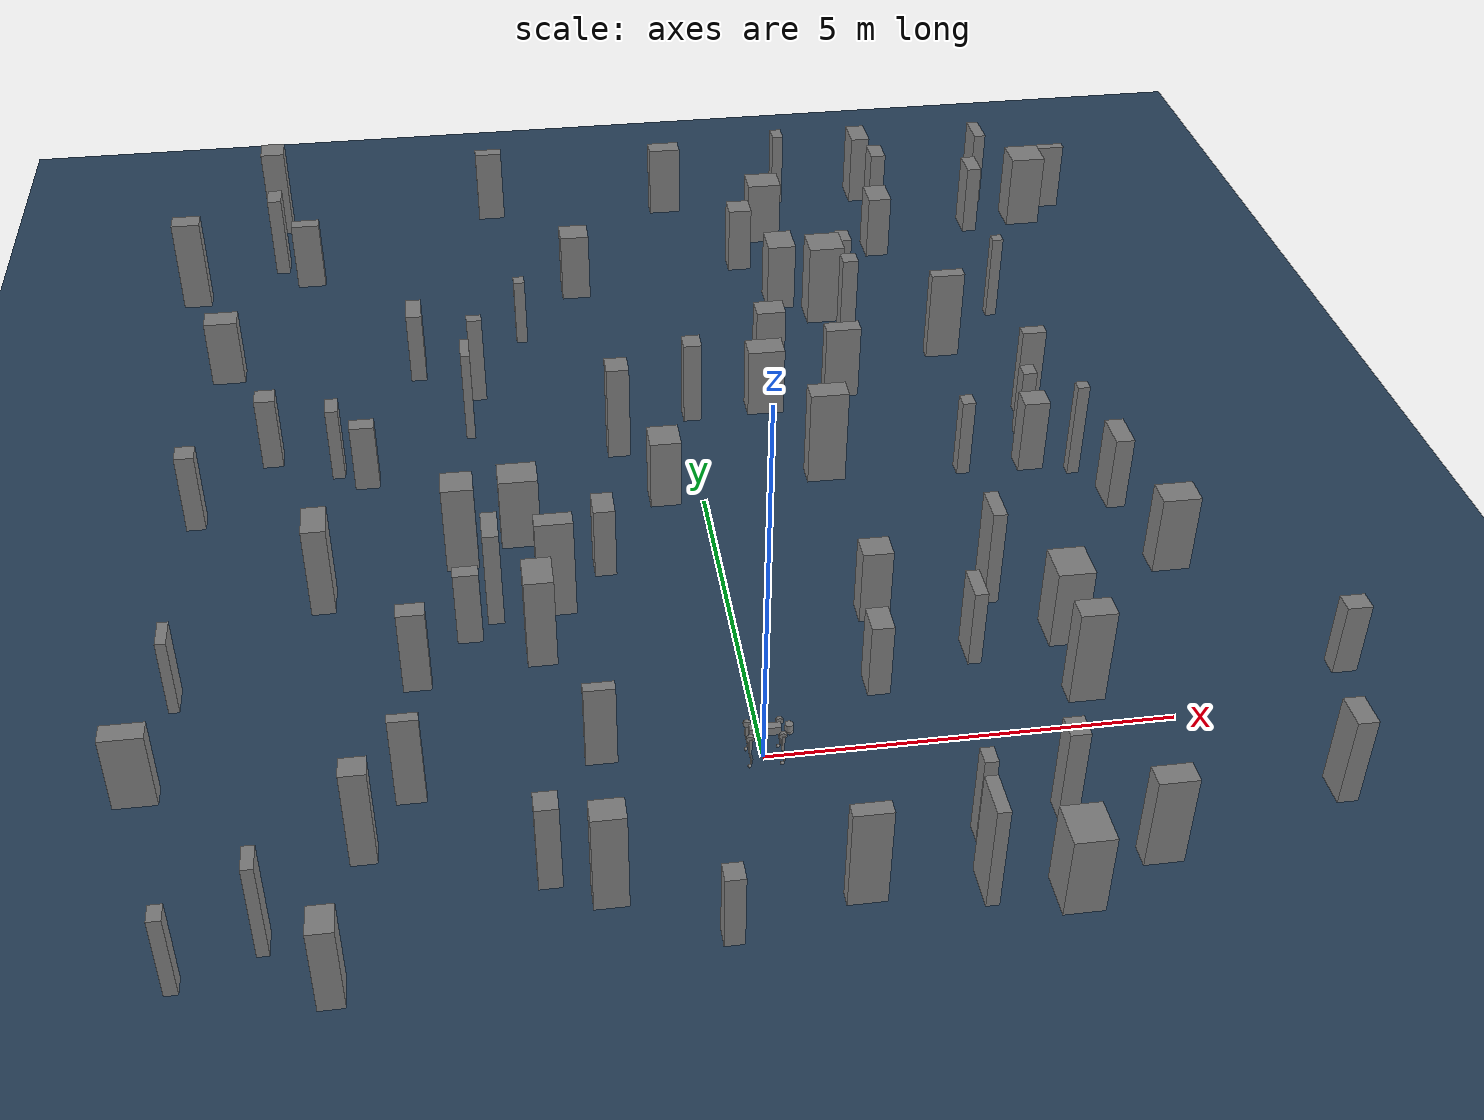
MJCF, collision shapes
<mujoco model="go2 scene">
  <include file="go2.xml" />

  <statistic center="0 0 0.1" extent="0.8" />

  <visual>
    <headlight diffuse="0.6 0.6 0.6" ambient="0.3 0.3 0.3" specular="0 0 0" />
    <rgba haze="0.15 0.25 0.35 1" />
    <global azimuth="-130" elevation="-20" />
  </visual>

  <asset>
    <texture type="skybox" builtin="gradient" rgb1="0.3 0.5 0.7" rgb2="0 0 0" width="512" height="3072" />
    <texture type="2d" name="groundplane" builtin="checker" mark="edge" rgb1="0.2 0.3 0.4" rgb2="0.1 0.2 0.3" markrgb="0.8 0.8 0.8" width="300" height="300" />
    <material name="groundplane" texture="groundplane" texuniform="true" texrepeat="5 5" reflectance="0.2" />
  </asset>

  <worldbody>
    <light pos="0 0 1.5" dir="0 0 -1" directional="true" />
    <geom name="floor" size="0 0 0.05" type="plane" material="groundplane" />
  <geom pos="0.10071943746270584 7.136932128754733 0.643684454831798" type="box" size="0.13100779988390282 0.14711312286241593 0.643684454831798" quat="1.0 0.0 0.0 0.0" /><geom pos="3.791109212029057 11.607750209671666 0.5216076152477432" type="box" size="0.18248277175930644 0.24793505421675938 0.5216076152477432" quat="1.0 0.0 0.0 0.0" /><geom pos="-7.304890818238102 11.363168016251223 0.7357384436638207" type="box" size="0.2131144150558406 0.14813400554509704 0.7357384436638207" quat="1.0 0.0 0.0 0.0" /><geom pos="-1.9015175131826538 0.21341936621922075 0.5830998529928246" type="box" size="0.18944045443132787 0.06884213979334089 0.5830998529928246" quat="1.0 0.0 0.0 0.0" /><geom pos="-2.0060548238532325 -1.887046198872417 0.6789512086454774" type="box" size="0.19815918210781147 0.15443679192282198 0.6789512086454774" quat="1.0 0.0 0.0 0.0" /><geom pos="-0.537827731828231 5.213203512839109 0.5205362005931232" type="box" size="0.21387547940876422 0.21760473924229892 0.5205362005931232" quat="1.0 0.0 0.0 0.0" /><geom pos="5.8947079523632695 2.89227182265034 0.5768605781198436" type="box" size="0.25669833583347845 0.18851423701125186 0.5768605781198436" quat="1.0 0.0 0.0 0.0" /><geom pos="-5.515091798130912 11.710389250581597 0.5537796012384049" type="box" size="0.21616985914240064 0.10055434133559162 0.5537796012384049" quat="1.0 0.0 0.0 0.0" /><geom pos="4.784465939933828 6.035153998589067 0.5506512245306338" type="box" size="0.10121730902194409 0.11695065562077839 0.5506512245306338" quat="1.0 0.0 0.0 0.0" /><geom pos="-2.9904473190418264 3.0738900413696584 0.7038018900191106" type="box" size="0.10479390641178189 0.25471010187306287 0.7038018900191106" quat="1.0 0.0 0.0 0.0" /><geom pos="5.183332705132494 9.343079015641264 0.6795589055262323" type="box" size="0.08200918233358986 0.08065927702273304 0.6795589055262323" quat="1.0 0.0 0.0 0.0" /><geom pos="-3.8491208055354225 8.838788085160093 0.5608123058916346" type="box" size="0.11403644031183187 0.24267140649064275 0.5608123058916346" quat="1.0 0.0 0.0 0.0" /><geom pos="5.521766010782361 12.196335922889816 0.5812702126215671" type="box" size="0.11296734940979455 0.22974387777417188 0.5812702126215671" quat="1.0 0.0 0.0 0.0" /><geom pos="-2.4596885847505847 2.1944769219568694 0.6609018677340344" type="box" size="0.1868554702011598 0.24843173256368856 0.6609018677340344" quat="1.0 0.0 0.0 0.0" /><geom pos="0.7455097421952805 -2.2580256986878573 0.6826406308112505" type="box" size="0.227854321963636 0.09046782537227094 0.6826406308112505" quat="1.0 0.0 0.0 0.0" /><geom pos="2.9240370790302306 10.150180994275512 0.5578403970872376" type="box" size="0.10566934731649752 0.1668357446443801 0.5578403970872376" quat="1.0 0.0 0.0 0.0" /><geom pos="2.526292016712543 9.671546584724359 0.655733197175696" type="box" size="0.2690635270725595 0.2521968193394388 0.655733197175696" quat="1.0 0.0 0.0 0.0" /><geom pos="5.241654082157914 5.057016037322834 0.7218653289090369" type="box" size="0.08440657144028209 0.07806539927406576 0.7218653289090369" quat="1.0 0.0 0.0 0.0" /><geom pos="-2.971306358896613 8.027102979297648 0.6910142521682385" type="box" size="0.1086053393449109 0.07920876482199471 0.6910142521682385" quat="1.0 0.0 0.0 0.0" /><geom pos="4.996869376257642 6.629539584987894 0.688078219600459" type="box" size="0.1728156136078259 0.09091051335224756 0.688078219600459" quat="1.0 0.0 0.0 0.0" /><geom pos="-3.368389770890463 4.178150274509212 0.6502006557735177" type="box" size="0.21165731666120036 0.20810079840439555 0.6502006557735177" quat="1.0 0.0 0.0 0.0" /><geom pos="-2.6355633321653995 -1.5375637107787588 0.6079132042762607" type="box" size="0.13557962000960405 0.13961595291678316 0.6079132042762607" quat="1.0 0.0 0.0 0.0" /><geom pos="4.022573752934877 12.817978163023367 0.5925118494222417" type="box" size="0.11973765518178879 0.20145343326439039 0.5925118494222417" quat="1.0 0.0 0.0 0.0" /><geom pos="-5.943993180701501 6.787343855363375 0.5588286206763886" type="box" size="0.1417803164148273 0.14723764777004017 0.5588286206763886" quat="1.0 0.0 0.0 0.0" /><geom pos="-4.119918409101452 -0.1293009023022118 0.6447929372881145" type="box" size="0.17681921090727387 0.06497454691524503 0.6447929372881145" quat="1.0 0.0 0.0 0.0" /><geom pos="2.0788176507016196 -2.290820677366678 0.7147676367844552" type="box" size="0.07798441353718771 0.2712590200522539 0.7147676367844552" quat="1.0 0.0 0.0 0.0" /><geom pos="1.5653495843653893 1.0677673359035427 0.5288686505737413" type="box" size="0.1408969073353995 0.19788040944160057 0.5288686505737413" quat="1.0 0.0 0.0 0.0" /><geom pos="-7.251905634209944 0.30634355573881455 0.5302988162405423" type="box" size="0.26144280630787864 0.13184509597585736 0.5302988162405423" quat="1.0 0.0 0.0 0.0" /><geom pos="-2.5036916961170403 13.593440470757267 0.607024639597643" type="box" size="0.2121728441200334 0.09333291754658105 0.607024639597643" quat="1.0 0.0 0.0 0.0" /><geom pos="0.47061148283648 13.460879678541707 0.5888700967410236" type="box" size="0.253252474221741 0.141611209014241 0.5888700967410236" quat="1.0 0.0 0.0 0.0" /><geom pos="4.133713395614911 8.29685485731411 0.7103247967543216" type="box" size="0.2501995468273721 0.0924357273739645 0.7103247967543216" quat="1.0 0.0 0.0 0.0" /><geom pos="1.3508488079416914 7.81481426629353 0.6694540668779474" type="box" size="0.21318061469867358 0.1689769401738223 0.6694540668779474" quat="1.0 0.0 0.0 0.0" /><geom pos="-1.2887422638611445 10.87095376717756 0.5515296266139857" type="box" size="0.2196927341129566 0.2001550154268415 0.5515296266139857" quat="1.0 0.0 0.0 0.0" /><geom pos="-6.925500032850672 5.454509100802365 0.5975012707137137" type="box" size="0.13029186065964737 0.1417000309461531 0.5975012707137137" quat="1.0 0.0 0.0 0.0" /><geom pos="-2.1987285609416602 3.0057351953349243 0.7329063873623525" type="box" size="0.24572330895464162 0.11975989134095079 0.7329063873623525" quat="1.0 0.0 0.0 0.0" /><geom pos="-2.239637524660602 9.551464368580625 0.5345695502805957" type="box" size="0.08230734774611391 0.09343514122071088 0.5345695502805957" quat="1.0 0.0 0.0 0.0" /><geom pos="-0.7685565398468528 -2.6019773943382094 0.5055953414934523" type="box" size="0.11539705119647084 0.12190552487836166 0.5055953414934523" quat="1.0 0.0 0.0 0.0" /><geom pos="-3.1360607769762554 7.197623263462766 0.7053704692950588" type="box" size="0.06388788856722528 0.2242328111077776 0.7053704692950588" quat="1.0 0.0 0.0 0.0" /><geom pos="3.36866051828825 2.624019456635147 0.7117042128063876" type="box" size="0.09098680418874835 0.2462767973087356 0.7117042128063876" quat="1.0 0.0 0.0 0.0" /><geom pos="-6.0535399977968325 13.642207669881056 0.7395219237253268" type="box" size="0.18429821811370783 0.1984309593835393 0.7395219237253268" quat="1.0 0.0 0.0 0.0" /><geom pos="-1.510710266106324 3.8053914759442216 0.5253880349636281" type="box" size="0.1423597624136115 0.20754862713469213 0.5253880349636281" quat="1.0 0.0 0.0 0.0" /><geom pos="6.981847932589058 12.718510455759011 0.5594221289591068" type="box" size="0.274219509127371 0.0696288573434972 0.5594221289591068" quat="1.0 0.0 0.0 0.0" /><geom pos="5.84982536211688 13.180328297730401 0.6451493510031737" type="box" size="0.09296302648930398 0.2652588418643026 0.6451493510031737" quat="1.0 0.0 0.0 0.0" /><geom pos="-6.687885834230224 9.068248514935604 0.5237348688519464" type="box" size="0.24003362805558384 0.16954610655875163 0.5237348688519464" quat="1.0 0.0 0.0 0.0" /><geom pos="-4.613742639055879 6.057763580707372 0.5119357669693113" type="box" size="0.16952276771732283 0.11143565205140926 0.5119357669693113" quat="1.0 0.0 0.0 0.0" /><geom pos="-5.990409618222344 12.290761454232076 0.6607583611053964" type="box" size="0.10614828923132438 0.18791120339452363 0.6607583611053964" quat="1.0 0.0 0.0 0.0" /><geom pos="4.115202549515423 1.7098422714267287 0.5705014029114823" type="box" size="0.23818321002565876 0.2645911273897402 0.5705014029114823" quat="1.0 0.0 0.0 0.0" /><geom pos="1.9889916509581553 12.294991356541836 0.5247851193808508" type="box" size="0.2656796738943199 0.2198902250498756 0.5247851193808508" quat="1.0 0.0 0.0 0.0" /><geom pos="-5.017335663006966 6.405259757236703 0.5672689563016173" type="box" size="0.0874603137313791 0.16200869116752165 0.5672689563016173" quat="1.0 0.0 0.0 0.0" /><geom pos="1.1881201763589182 7.210876021973496 0.5319691618807856" type="box" size="0.2657572761796963 0.181917303221523 0.5319691618807856" quat="1.0 0.0 0.0 0.0" /><geom pos="6.510080054473656 -1.400639056947791 0.615933815057241" type="box" size="0.12576528199335216 0.21227257785650497 0.615933815057241" quat="1.0 0.0 0.0 0.0" /><geom pos="3.034038160293319 -2.519197531012916 0.5507972916690442" type="box" size="0.24165828817715757 0.2745657220061748 0.5507972916690442" quat="1.0 0.0 0.0 0.0" /><geom pos="-5.708930962019579 -2.032724735448248 0.6661377053161749" type="box" size="0.06980733158582414 0.16651171518880567 0.6661377053161749" quat="1.0 0.0 0.0 0.0" /><geom pos="-5.17570438807775 3.5663668222565077 0.6679981812949547" type="box" size="0.15606222307188858 0.26082052848458326 0.6679981812949547" quat="1.0 0.0 0.0 0.0" /><geom pos="-6.935855184865984 1.9002069550875063 0.5510638539282311" type="box" size="0.06614938027631424 0.1999796670440851 0.5510638539282311" quat="1.0 0.0 0.0 0.0" /><geom pos="2.8644535629569985 1.4978676923608787 0.5563013043181584" type="box" size="0.08569344120572603 0.2361428933803479 0.5563013043181584" quat="1.0 0.0 0.0 0.0" /><geom pos="2.4358100811538668 13.539011391955311 0.6291632368436345" type="box" size="0.08780991703238153 0.14184117619044523 0.6291632368436345" quat="1.0 0.0 0.0 0.0" /><geom pos="-4.658192610061118 -0.9149995305094554 0.6899435824327274" type="box" size="0.15419879219054733 0.1426094004291446 0.6899435824327274" quat="1.0 0.0 0.0 0.0" /><geom pos="2.7652528848012707 8.930651707669348 0.7135298165771049" type="box" size="0.11852578024673653 0.12467074134793536 0.7135298165771049" quat="1.0 0.0 0.0 0.0" /><geom pos="-6.631142103062306 -2.4732661739935358 0.5712275004928915" type="box" size="0.07882966288043802 0.11235878724131673 0.5712275004928915" quat="1.0 0.0 0.0 0.0" /><geom pos="1.7610512778699237 5.425604154365335 0.7188447790336067" type="box" size="0.2665295380418825 0.1535224399252633 0.7188447790336067" quat="1.0 0.0 0.0 0.0" /><geom pos="4.114920120815094 -2.093049675086186 0.6277993315843952" type="box" size="0.23416767474154265 0.13770790356289875 0.6277993315843952" quat="1.0 0.0 0.0 0.0" /><geom pos="2.213045327492388 -1.5077927242831182 0.6083320879327735" type="box" size="0.08077092431376076 0.1162261856125125 0.6083320879327735" quat="1.0 0.0 0.0 0.0" /><geom pos="3.853331060595133 13.539604914009583 0.5887830297213168" type="box" size="0.15137661052158766 0.25948847295001054 0.5887830297213168" quat="1.0 0.0 0.0 0.0" /><geom pos="4.048999789080433 0.5701835014339593 0.6816623162143128" type="box" size="0.2273086608038057 0.15248804310490008 0.6816623162143128" quat="1.0 0.0 0.0 0.0" /><geom pos="1.9125076044689209 10.184243054002984 0.5522015150576188" type="box" size="0.2147545431039933 0.2568007412439213 0.5522015150576188" quat="1.0 0.0 0.0 0.0" /><geom pos="3.2592329325060545 -1.290219703686024 0.6528888799014025" type="box" size="0.12159710971046175 0.146004547010312 0.6528888799014025" quat="1.0 0.0 0.0 0.0" /><geom pos="1.798158422481773 2.4073280629952443 0.5383853018600103" type="box" size="0.19790630075803514 0.1718595263564362 0.5383853018600103" quat="1.0 0.0 0.0 0.0" /><geom pos="4.668522030029569 5.305434749391622 0.5597473402990263" type="box" size="0.1802917340393935 0.16479883782080318 0.5597473402990263" quat="1.0 0.0 0.0 0.0" /><geom pos="-2.571741164955484 4.565651532280519 0.5410185916320245" type="box" size="0.2629306243719131 0.21732471045720617 0.5410185916320245" quat="1.0 0.0 0.0 0.0" /><geom pos="6.484167197656456 12.351781056421565 0.6046786327481941" type="box" size="0.2731772151516607 0.2567607289296141 0.6046786327481941" quat="1.0 0.0 0.0 0.0" /><geom pos="-4.9846915914898435 -2.7988462940269887 0.5824645302412015" type="box" size="0.14956353101786296 0.19117653453473019 0.5824645302412015" quat="1.0 0.0 0.0 0.0" /><geom pos="-1.0542970971779004 6.405849653912863 0.7305446470038335" type="box" size="0.1582057688248074 0.1665324147553817 0.7305446470038335" quat="1.0 0.0 0.0 0.0" /><geom pos="1.4470084733477062 11.39079355081128 0.5399439025208999" type="box" size="0.17843870076339907 0.17686791829837195 0.5399439025208999" quat="1.0 0.0 0.0 0.0" /><geom pos="-4.011377974345144 1.8112767024238967 0.6022056205761028" type="box" size="0.17455647713466527 0.11718560781469087 0.6022056205761028" quat="1.0 0.0 0.0 0.0" /><geom pos="2.3749561293832917 7.435436320590963 0.5801772781364447" type="box" size="0.2557511450780362 0.11391132342746983 0.5801772781364447" quat="1.0 0.0 0.0 0.0" /><geom pos="3.7038212650466837 5.2910277819924145 0.5930119318744028" type="box" size="0.09049951435785655 0.11073924597253818 0.5930119318744028" quat="1.0 0.0 0.0 0.0" /><geom pos="7.364605620957906 0.6181696452258061 0.5156440925577673" type="box" size="0.15934247997596823 0.125342572629533 0.5156440925577673" quat="1.0 0.0 0.0 0.0" /><geom pos="5.596999134276711 4.38379479163198 0.5567977883456873" type="box" size="0.12896421108082395 0.25917324741450887 0.5567977883456873" quat="1.0 0.0 0.0 0.0" /><geom pos="-3.331339212245232 2.5985655140904336 0.5406813563976864" type="box" size="0.16178284807563897 0.0968874132195219 0.5406813563976864" quat="1.0 0.0 0.0 0.0" /></worldbody>
</mujoco>

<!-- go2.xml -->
<mujoco model="go2">
  <compiler angle="radian" meshdir="assets" autolimits="true" />

  <option cone="elliptic" impratio="100" />

  <default>
    <default class="go2">
      <geom friction="0.4" margin="0.001" condim="1"/>
      <joint axis="0 1 0" damping="0.1" armature="0.01" frictionloss="0.2"/>
      <motor ctrlrange="-23.7 23.7"/>
      <default class="abduction">
        <joint axis="1 0 0" range="-1.0472 1.0472"/>
      </default>
      <default class="hip">
        <default class="front_hip">
          <joint range="-1.5708 3.4907"/>
        </default>
        <default class="back_hip">
          <joint range="-0.5236 4.5379"/>
        </default>
      </default>
      <default class="knee">
        <joint range="-2.7227 -0.83776"/>
        <motor ctrlrange="-45.43 45.43"/>
      </default>
      <default class="visual">
        <geom type="mesh" contype="0" conaffinity="0" group="2"/>
      </default>
      <default class="collision">
        <geom group="3"/>
        <default class="foot">
          <geom size="0.022" pos="-0.002 0 -0.213" priority="1" condim="6"
            friction="0.4 0.02 0.01"/>
        </default>
      </default>
    </default>
  </default>

  <asset>
    <material name="metal" rgba=".9 .95 .95 1" />
    <material name="black" rgba="0 0 0 1" />
    <material name="white" rgba="1 1 1 1" />
    <material name="gray" rgba="0.671705 0.692426 0.774270 1" />

    <mesh file="base_0.obj" />
    <mesh file="base_1.obj" />
    <mesh file="base_2.obj" />
    <mesh file="base_3.obj" />
    <mesh file="base_4.obj" />
    <mesh file="hip_0.obj" />
    <mesh file="hip_1.obj" />
    <mesh file="thigh_0.obj" />
    <mesh file="thigh_1.obj" />
    <mesh file="thigh_mirror_0.obj" />
    <mesh file="thigh_mirror_1.obj" />
    <mesh file="calf_0.obj" />
    <mesh file="calf_1.obj" />
    <mesh file="calf_mirror_0.obj" />
    <mesh file="calf_mirror_1.obj" />
    <mesh file="foot.obj" />
  </asset>

  <worldbody>
    <body name="base_link" pos="0 0 0.445" childclass="go2">
      <inertial pos="0.021112 0 -0.005366" quat="-0.000543471 0.713435 -0.00173769 0.700719"
        mass="6.921"
        diaginertia="0.107027 0.0980771 0.0244531" />
      <freejoint />
      <geom mesh="base_0" material="black" class="visual" />
      <geom mesh="base_1" material="black" class="visual" />
      <geom mesh="base_2" material="black" class="visual" />
      <geom mesh="base_3" material="white" class="visual" />
      <geom mesh="base_4" material="gray" class="visual" />
      <geom size="0.1881 0.04675 0.057" type="box" class="collision" />
      <geom size="0.05 0.045" pos="0.285 0 0.01" type="cylinder" class="collision" />
      <geom size="0.047" pos="0.293 0 -0.06" class="collision" />
      <site name="imu" pos="-0.02557 0 0.04232" />
      <camera name="base_camera" pos="0.32715 0 0.09297" xyaxes="0 -1 0 0 0 1"
        resolution="640 480" sensorsize="640 480"
        focalpixel="391.9765 391.9765" principalpixel="0.7953 -1.4250"
        output="rgb depth" />
      <body name="FL_hip" pos="0.1934 0.0465 0">
        <inertial pos="-0.0054 0.00194 -0.000105" quat="0.497014 0.499245 0.505462 0.498237"
          mass="0.678"
          diaginertia="0.00088403 0.000596003 0.000479967" />
        <joint name="FL_hip_joint" class="abduction" />
        <geom mesh="hip_0" material="metal" class="visual" />
        <geom mesh="hip_1" material="gray" class="visual" />
        <geom size="0.046 0.02" pos="0 0.08 0" quat="1 1 0 0" type="cylinder" class="collision" />
        <body name="FL_thigh" pos="0 0.0955 0">
          <inertial pos="-0.00374 -0.0223 -0.0327" quat="0.829533 0.0847635 -0.0200632 0.551623"
            mass="1.152"
            diaginertia="0.00594973 0.00584149 0.000878787" />
          <joint name="FL_thigh_joint" class="front_hip" />
          <geom mesh="thigh_0" material="metal" class="visual" />
          <geom mesh="thigh_1" material="gray" class="visual" />
          <geom size="0.1065 0.01225 0.017" pos="0 0 -0.1065" quat="0.707107 0 0.707107 0"
            type="box" class="collision" />
          <body name="FL_calf" pos="0 0 -0.213">
            <inertial pos="0.00629595 -0.000622121 -0.141417"
              quat="0.710672 0.00154099 -0.00450087 0.703508"
              mass="0.241352" diaginertia="0.0014901 0.00146356 5.31397e-05" />
            <joint name="FL_calf_joint" class="knee" />
            <geom mesh="calf_0" material="gray" class="visual" />
            <geom mesh="calf_1" material="black" class="visual" />
            <geom size="0.012 0.06" pos="0.008 0 -0.06" quat="0.994493 0 -0.104807 0"
              type="cylinder" class="collision" />
            <geom size="0.011 0.0325" pos="0.02 0 -0.148" quat="0.999688 0 0.0249974 0"
              type="cylinder" class="collision" />
            <geom pos="0 0 -0.213" mesh="foot" class="visual" material="black" />
            <geom name="FL" class="foot" />
            <body name="FL_foot" pos="0 0 -0.213" />
          </body>
        </body>
      </body>
      <body name="FR_hip" pos="0.1934 -0.0465 0">
        <inertial pos="-0.0054 -0.00194 -0.000105" quat="0.498237 0.505462 0.499245 0.497014"
          mass="0.678"
          diaginertia="0.00088403 0.000596003 0.000479967" />
        <joint name="FR_hip_joint" class="abduction" />
        <geom mesh="hip_0" material="metal" class="visual" quat="4.63268e-05 1 0 0" />
        <geom mesh="hip_1" material="gray" class="visual" quat="4.63268e-05 1 0 0" />
        <geom size="0.046 0.02" pos="0 -0.08 0" quat="0.707107 0.707107 0 0" type="cylinder"
          class="collision" />
        <body name="FR_thigh" pos="0 -0.0955 0">
          <inertial pos="-0.00374 0.0223 -0.0327" quat="0.551623 -0.0200632 0.0847635 0.829533"
            mass="1.152"
            diaginertia="0.00594973 0.00584149 0.000878787" />
          <joint name="FR_thigh_joint" class="front_hip" />
          <geom mesh="thigh_mirror_0" material="metal" class="visual" />
          <geom mesh="thigh_mirror_1" material="gray" class="visual" />
          <geom size="0.1065 0.01225 0.017" pos="0 0 -0.1065" quat="0.707107 0 0.707107 0"
            type="box" class="collision" />
          <body name="FR_calf" pos="0 0 -0.213">
            <inertial pos="0.00629595 0.000622121 -0.141417"
              quat="0.703508 -0.00450087 0.00154099 0.710672"
              mass="0.241352" diaginertia="0.0014901 0.00146356 5.31397e-05" />
            <joint name="FR_calf_joint" class="knee" />
            <geom mesh="calf_mirror_0" material="gray" class="visual" />
            <geom mesh="calf_mirror_1" material="black" class="visual" />
            <geom size="0.013 0.06" pos="0.01 0 -0.06" quat="0.995004 0 -0.0998334 0"
              type="cylinder" class="collision" />
            <geom size="0.011 0.0325" pos="0.02 0 -0.148" quat="0.999688 0 0.0249974 0"
              type="cylinder" class="collision" />
            <geom pos="0 0 -0.213" mesh="foot" class="visual" material="black" />
            <geom name="FR" class="foot" />
            <body name="FR_foot" pos="0 0 -0.213" />
          </body>
        </body>
      </body>
      <body name="RL_hip" pos="-0.1934 0.0465 0">
        <inertial pos="0.0054 0.00194 -0.000105" quat="0.505462 0.498237 0.497014 0.499245"
          mass="0.678"
          diaginertia="0.00088403 0.000596003 0.000479967" />
        <joint name="RL_hip_joint" class="abduction" />
        <geom mesh="hip_0" material="metal" class="visual" quat="4.63268e-05 0 1 0" />
        <geom mesh="hip_1" material="gray" class="visual" quat="4.63268e-05 0 1 0" />
        <geom size="0.046 0.02" pos="0 0.08 0" quat="0.707107 0.707107 0 0" type="cylinder"
          class="collision" />
        <body name="RL_thigh" pos="0 0.0955 0">
          <inertial pos="-0.00374 -0.0223 -0.0327" quat="0.829533 0.0847635 -0.0200632 0.551623"
            mass="1.152"
            diaginertia="0.00594973 0.00584149 0.000878787" />
          <joint name="RL_thigh_joint" class="back_hip" />
          <geom mesh="thigh_0" material="metal" class="visual" />
          <geom mesh="thigh_1" material="gray" class="visual" />
          <geom size="0.1065 0.01225 0.017" pos="0 0 -0.1065" quat="0.707107 0 0.707107 0"
            type="box" class="collision" />
          <body name="RL_calf" pos="0 0 -0.213">
            <inertial pos="0.00629595 -0.000622121 -0.141417"
              quat="0.710672 0.00154099 -0.00450087 0.703508"
              mass="0.241352" diaginertia="0.0014901 0.00146356 5.31397e-05" />
            <joint name="RL_calf_joint" class="knee" />
            <geom mesh="calf_0" material="gray" class="visual" />
            <geom mesh="calf_1" material="black" class="visual" />
            <geom size="0.013 0.06" pos="0.01 0 -0.06" quat="0.995004 0 -0.0998334 0"
              type="cylinder" class="collision" />
            <geom size="0.011 0.0325" pos="0.02 0 -0.148" quat="0.999688 0 0.0249974 0"
              type="cylinder" class="collision" />
            <geom pos="0 0 -0.213" mesh="foot" class="visual" material="black" />
            <geom name="RL" class="foot" />
            <body name="RL_foot" pos="0 0 -0.213" />
          </body>
        </body>
      </body>
      <body name="RR_hip" pos="-0.1934 -0.0465 0">
        <inertial pos="0.0054 -0.00194 -0.000105" quat="0.499245 0.497014 0.498237 0.505462"
          mass="0.678"
          diaginertia="0.00088403 0.000596003 0.000479967" />
        <joint name="RR_hip_joint" class="abduction" />
        <geom mesh="hip_0" material="metal" class="visual"
          quat="2.14617e-09 4.63268e-05 4.63268e-05 -1" />
        <geom mesh="hip_1" material="gray" class="visual"
          quat="2.14617e-09 4.63268e-05 4.63268e-05 -1" />
        <geom size="0.046 0.02" pos="0 -0.08 0" quat="0.707107 0.707107 0 0" type="cylinder"
          class="collision" />
        <body name="RR_thigh" pos="0 -0.0955 0">
          <inertial pos="-0.00374 0.0223 -0.0327" quat="0.551623 -0.0200632 0.0847635 0.829533"
            mass="1.152"
            diaginertia="0.00594973 0.00584149 0.000878787" />
          <joint name="RR_thigh_joint" class="back_hip" />
          <geom mesh="thigh_mirror_0" material="metal" class="visual" />
          <geom mesh="thigh_mirror_1" material="gray" class="visual" />
          <geom size="0.1065 0.01225 0.017" pos="0 0 -0.1065" quat="0.707107 0 0.707107 0"
            type="box" class="collision" />
          <body name="RR_calf" pos="0 0 -0.213">
            <inertial pos="0.00629595 0.000622121 -0.141417"
              quat="0.703508 -0.00450087 0.00154099 0.710672"
              mass="0.241352" diaginertia="0.0014901 0.00146356 5.31397e-05" />
            <joint name="RR_calf_joint" class="knee" />
            <geom mesh="calf_mirror_0" material="gray" class="visual" />
            <geom mesh="calf_mirror_1" material="black" class="visual" />
            <geom size="0.013 0.06" pos="0.01 0 -0.06" quat="0.995004 0 -0.0998334 0"
              type="cylinder" class="collision" />
            <geom size="0.011 0.0325" pos="0.02 0 -0.148" quat="0.999688 0 0.0249974 0"
              type="cylinder" class="collision" />
            <geom pos="0 0 -0.213" mesh="foot" class="visual" material="black" />
            <geom name="RR" class="foot" />
            <body name="RR_foot" pos="0 0 -0.213" />
          </body>
        </body>
      </body>
    </body>
  </worldbody>

  <actuator>
    <motor class="abduction" name="FR_hip" joint="FR_hip_joint" />
    <motor class="hip" name="FR_thigh" joint="FR_thigh_joint" />
    <motor class="knee" name="FR_calf" joint="FR_calf_joint" />
    <motor class="abduction" name="FL_hip" joint="FL_hip_joint" />
    <motor class="hip" name="FL_thigh" joint="FL_thigh_joint" />
    <motor class="knee" name="FL_calf" joint="FL_calf_joint" />
    <motor class="abduction" name="RR_hip" joint="RR_hip_joint" />
    <motor class="hip" name="RR_thigh" joint="RR_thigh_joint" />
    <motor class="knee" name="RR_calf" joint="RR_calf_joint" />
    <motor class="abduction" name="RL_hip" joint="RL_hip_joint" />
    <motor class="hip" name="RL_thigh" joint="RL_thigh_joint" />
    <motor class="knee" name="RL_calf" joint="RL_calf_joint" />
  </actuator>

  <sensor>
    <jointpos name="FR_hip_pos" joint="FR_hip_joint" />
    <jointpos name="FR_thigh_pos" joint="FR_thigh_joint" />
    <jointpos name="FR_calf_pos" joint="FR_calf_joint" />
    <jointpos name="FL_hip_pos" joint="FL_hip_joint" />
    <jointpos name="FL_thigh_pos" joint="FL_thigh_joint" />
    <jointpos name="FL_calf_pos" joint="FL_calf_joint" />
    <jointpos name="RR_hip_pos" joint="RR_hip_joint" />
    <jointpos name="RR_thigh_pos" joint="RR_thigh_joint" />
    <jointpos name="RR_calf_pos" joint="RR_calf_joint" />
    <jointpos name="RL_hip_pos" joint="RL_hip_joint" />
    <jointpos name="RL_thigh_pos" joint="RL_thigh_joint" />
    <jointpos name="RL_calf_pos" joint="RL_calf_joint" />

    <jointvel name="FR_hip_vel" joint="FR_hip_joint" />
    <jointvel name="FR_thigh_vel" joint="FR_thigh_joint" />
    <jointvel name="FR_calf_vel" joint="FR_calf_joint" />
    <jointvel name="FL_hip_vel" joint="FL_hip_joint" />
    <jointvel name="FL_thigh_vel" joint="FL_thigh_joint" />
    <jointvel name="FL_calf_vel" joint="FL_calf_joint" />
    <jointvel name="RR_hip_vel" joint="RR_hip_joint" />
    <jointvel name="RR_thigh_vel" joint="RR_thigh_joint" />
    <jointvel name="RR_calf_vel" joint="RR_calf_joint" />
    <jointvel name="RL_hip_vel" joint="RL_hip_joint" />
    <jointvel name="RL_thigh_vel" joint="RL_thigh_joint" />
    <jointvel name="RL_calf_vel" joint="RL_calf_joint" />

    <jointactuatorfrc name="FR_hip_torque" joint="FR_hip_joint" noise="0.01" />
    <jointactuatorfrc name="FR_thigh_torque" joint="FR_thigh_joint" noise="0.01" />
    <jointactuatorfrc name="FR_calf_torque" joint="FR_calf_joint" noise="0.01" />
    <jointactuatorfrc name="FL_hip_torque" joint="FL_hip_joint" noise="0.01" />
    <jointactuatorfrc name="FL_thigh_torque" joint="FL_thigh_joint" noise="0.01" />
    <jointactuatorfrc name="FL_calf_torque" joint="FL_calf_joint" noise="0.01" />
    <jointactuatorfrc name="RR_hip_torque" joint="RR_hip_joint" noise="0.01" />
    <jointactuatorfrc name="RR_thigh_torque" joint="RR_thigh_joint" noise="0.01" />
    <jointactuatorfrc name="RR_calf_torque" joint="RR_calf_joint" noise="0.01" />
    <jointactuatorfrc name="RL_hip_torque" joint="RL_hip_joint" noise="0.01" />
    <jointactuatorfrc name="RL_thigh_torque" joint="RL_thigh_joint" noise="0.01" />
    <jointactuatorfrc name="RL_calf_torque" joint="RL_calf_joint" noise="0.01" />

    <framequat name="imu_quat" objtype="site" objname="imu" />
    <gyro name="imu_gyro" site="imu" />
    <accelerometer name="imu_acc" site="imu" />

    <framepos name="frame_pos" objtype="site" objname="imu" />
    <framelinvel name="frame_vel" objtype="site" objname="imu" />
  </sensor>

  <keyframe>
    <key name="home" qpos="0 0 0.27 1 0 0 0 0 0.9 -1.8 0 0.9 -1.8 0 0.9 -1.8 0 0.9 -1.8"
      ctrl="0 0.9 -1.8 0 0.9 -1.8 0 0.9 -1.8 0 0.9 -1.8" />
  </keyframe>
</mujoco>
